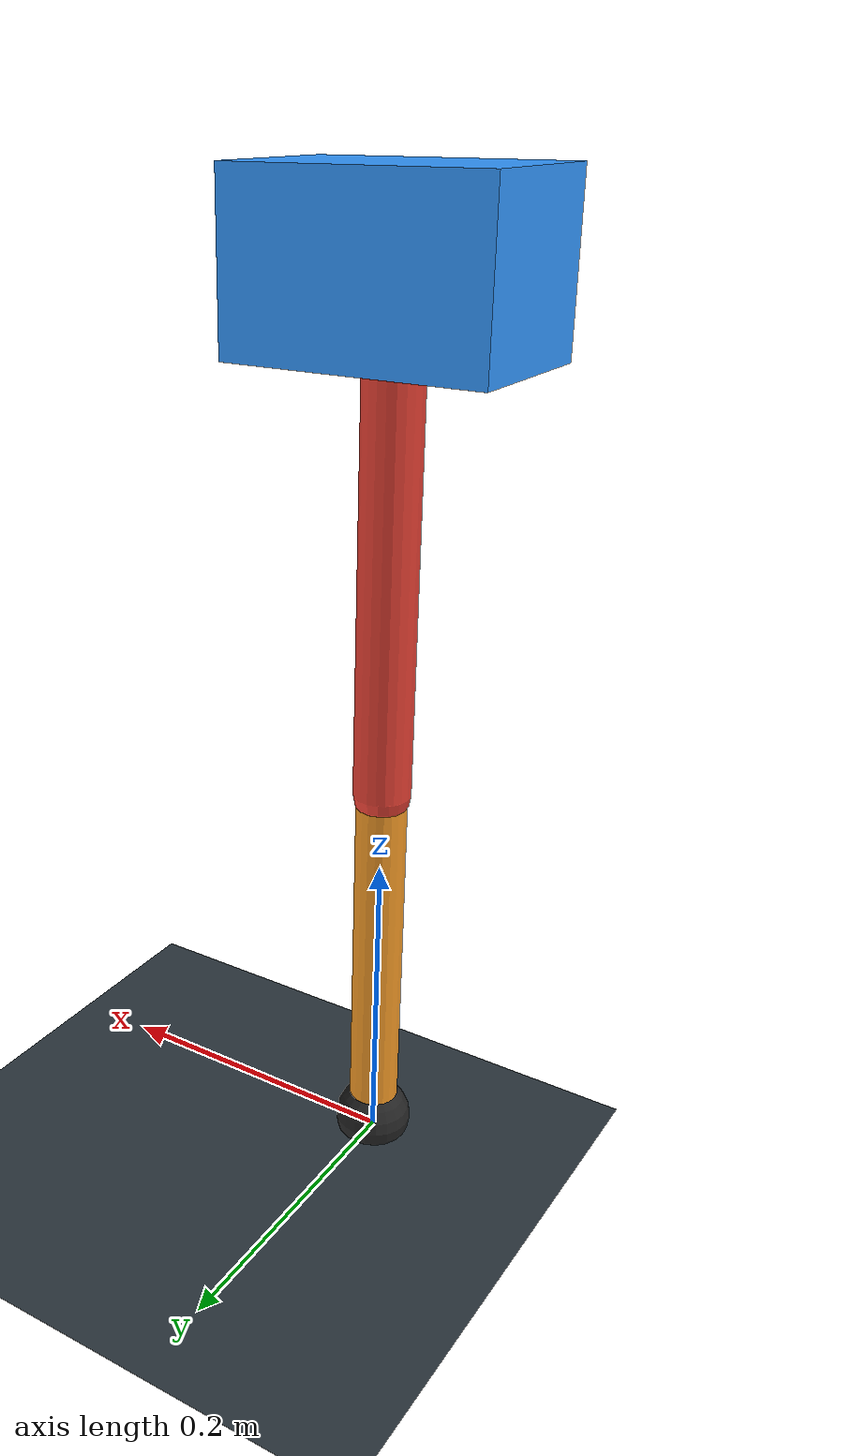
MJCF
<mujoco model="single_axis_two_bar">
  <compiler angle="radian" inertiafromgeom="true"/>
  <option timestep="0.001" integrator="implicitfast" gravity="0 0 -9.81"/>
  <default>
    <joint damping="0.08"/>
    <geom friction="1.2 0.01 0.0001" condim="3"/>
  </default>
  <worldbody>
    <geom name="floor" type="plane" size="5 5 0.1" rgba="0.18 0.22 0.25 1"/>
    <body name="carriage" pos="0 0 0.5604909927311856">
      <joint name="pole_slide" type="slide" axis="0 0 1"/>
      <geom name="payload" type="box" size="0.08 0.05 0.05" mass="1.6162714200568973" rgba="0.2 0.6 1 1"/>
      <body name="thigh" pos="0 0 0">
        <joint name="hip" type="hinge" axis="0 1 0"/>
        <geom name="thigh_link" type="capsule" fromto="0 0 0 0 0 -0.3087844270777582" size="0.018" mass="0.22001298451911486" rgba="0.9 0.25 0.2 1"/>
        <body name="shank" pos="0 0 -0.3087844270777582">
          <joint name="knee" type="hinge" axis="0 1 0"/>
          <geom name="shank_link" type="capsule" fromto="0 0 0 0 0 -0.2432681427482063" size="0.016" mass="0.1733317662129929" rgba="0.95 0.6 0.15 1"/>
          <geom name="foot" type="sphere" pos="0 0 -0.2432681427482063" size="0.025" mass="0.03" rgba="0.15 0.15 0.15 1"/>
          <site name="toe" pos="0 0 -0.2432681427482063" size="0.008"/>
        </body>
      </body>
    </body>
  </worldbody>
  <actuator>
    <motor name="hip_motor" joint="hip" ctrlrange="-12.455349689767198 12.455349689767198"/>
    <motor name="knee_motor" joint="knee" ctrlrange="-36.99399761121171 36.99399761121171"/>
  </actuator>
</mujoco>
